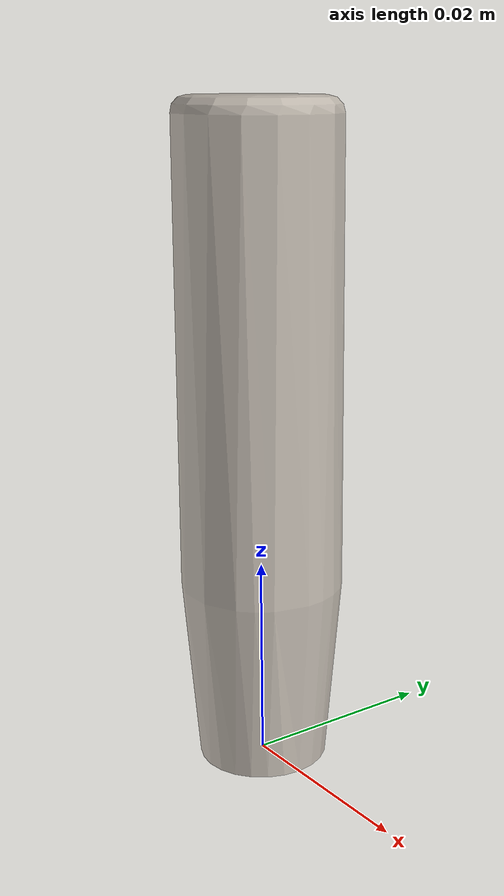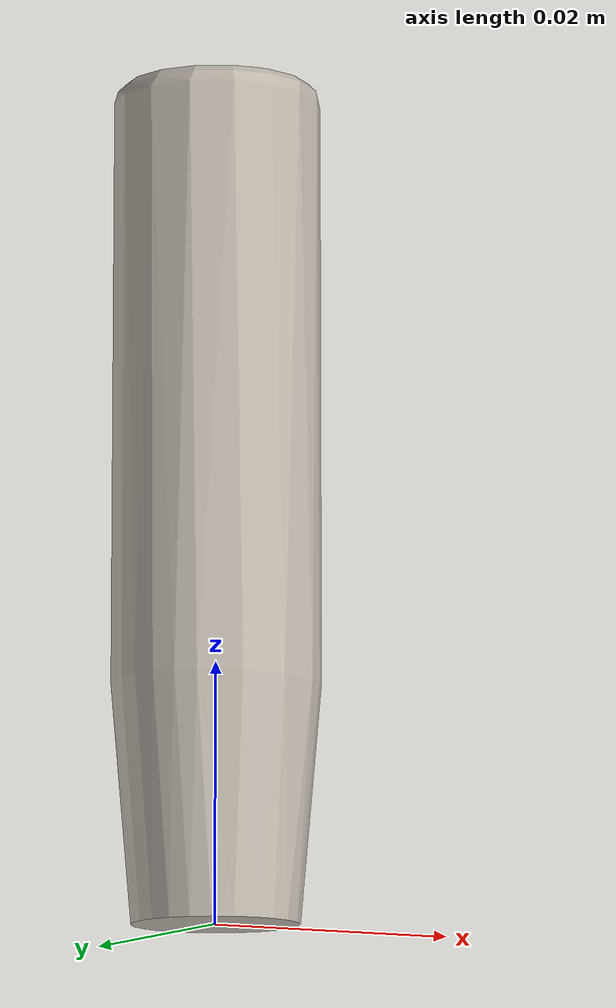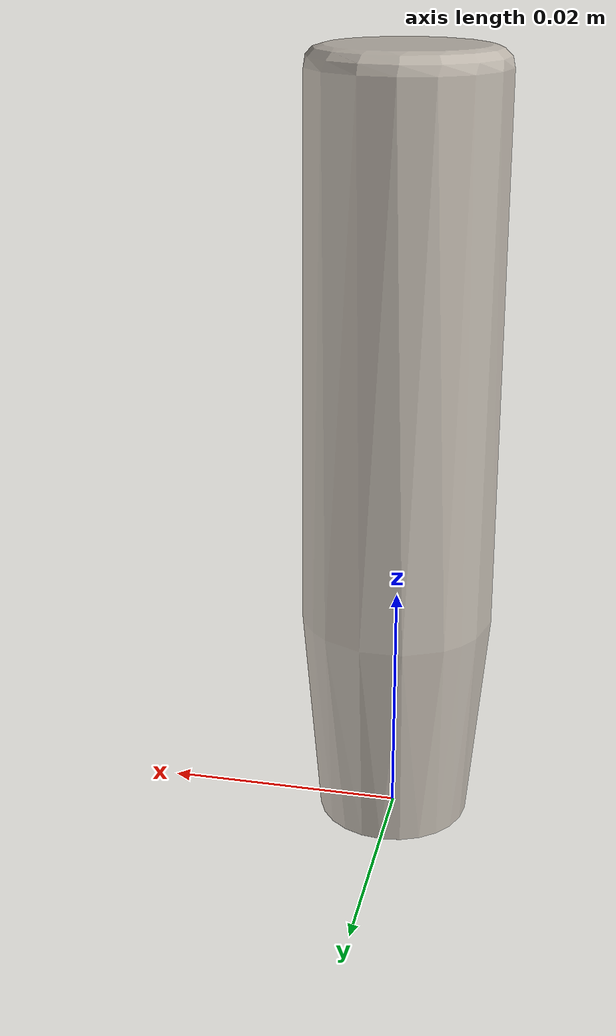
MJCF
<mujoco model="crank_handle">
  <default>
    <default class="visual">
      <geom group="2" type="mesh" contype="0" conaffinity="0"/>
    </default>
    <default class="collision">
      <geom group="3" type="mesh"/>
    </default>
  </default>
  <asset>
    <texture type="2d" name="material_crank_handle_0" file="material_crank_handle_0.png"/>
    <material name="material_crank_handle_0" texture="material_crank_handle_0" specular="0.4000000000000001" shininess="0.001"/>
    <mesh file="crank_handle.obj"/>
  </asset>
  <worldbody>
    <body name="crank_handle">
      <geom material="material_crank_handle_0" mesh="crank_handle" class="visual"/>
      <geom mesh="crank_handle" class="collision"/>
    </body>
  </worldbody>
</mujoco>
